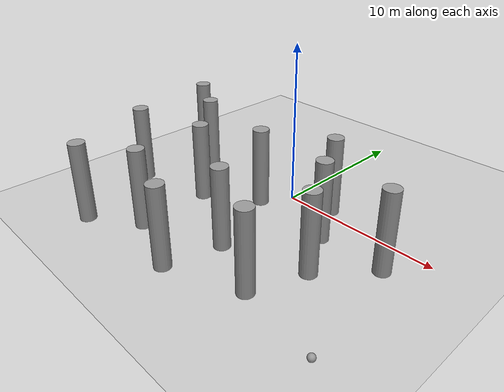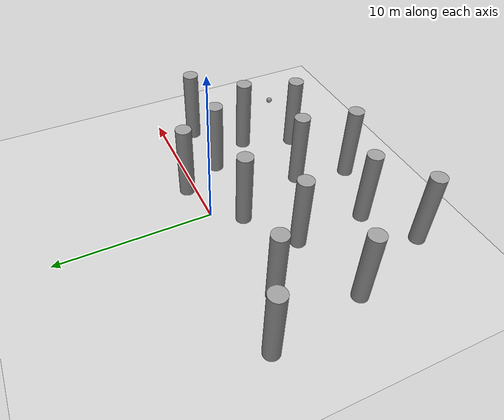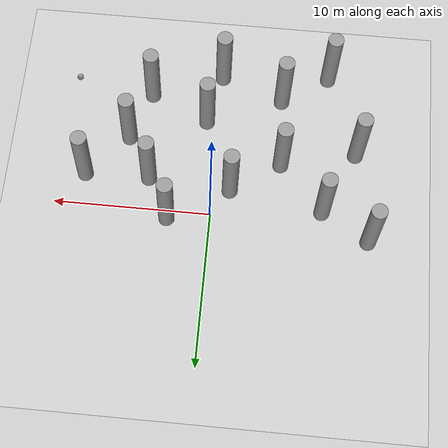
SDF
<sdf version="1.6">
 <world name="default">
  <model name="ground_plane">
   <static>1</static>
   <link name="link">
    <collision name="collision">
     <geometry><plane><normal>0 0 1</normal><size>100 100</size></plane></geometry>
    </collision>
    <visual name="visual">
     <cast_shadows>0</cast_shadows>
     <geometry><plane><normal>0 0 1</normal><size>100 100</size></plane></geometry>
     <material>
      <script><uri>file://media/materials/scripts/gazebo.material</uri><name>Gazebo/Gray</name></script>
     </material>
    </visual>
   </link>
  </model>
  <model name="unit_sphere">
   <link name="link">
    <inertial>
     <mass>1</mass>
     <inertia><ixx>0.1</ixx><ixy>0</ixy><ixz>0</ixz><iyy>0.1</iyy><iyz>0</iyz><izz>0.1</izz></inertia>
    </inertial>
    <gravity>0</gravity>
    <visual name="visual">
     <geometry><sphere><radius>0.203941</radius></sphere></geometry>
     <material>
      <script><name>Gazebo/Grey</name><uri>file://media/materials/scripts/gazebo.material</uri></script>
      <shader type="pixel"><normal_map>__default__</normal_map></shader>
     </material>
    </visual>
    <collision name="collision">
     <geometry><sphere><radius>0.203941</radius></sphere></geometry>
     <surface>
      <friction>
       <ode><mu>1</mu><mu2>1</mu2><fdir1>0 0 0</fdir1><slip1>0</slip1><slip2>0</slip2></ode>
       <torsional>
        <coefficient>1</coefficient>
        <patch_radius>0</patch_radius>
        <surface_radius>0</surface_radius>
        <use_patch_radius>1</use_patch_radius>
        <ode><slip>0</slip></ode>
       </torsional>
      </friction>
      <bounce><restitution_coefficient>0</restitution_coefficient><threshold>1e+06</threshold></bounce>
      <contact>
       <collide_without_contact>0</collide_without_contact>
       <collide_without_contact_bitmask>1</collide_without_contact_bitmask>
       <collide_bitmask>1</collide_bitmask>
       <ode>
        <soft_cfm>0</soft_cfm>
        <soft_erp>0.2</soft_erp>
        <kp>1e+13</kp>
        <kd>1</kd>
        <max_vel>0.01</max_vel>
        <min_depth>0</min_depth>
       </ode>
       <bullet>
        <split_impulse>1</split_impulse>
        <split_impulse_penetration_threshold>-0.01</split_impulse_penetration_threshold>
        <soft_cfm>0</soft_cfm>
        <soft_erp>0.2</soft_erp>
        <kp>1e+13</kp>
        <kd>1</kd>
       </bullet>
      </contact>
     </surface>
    </collision>
   </link>
   <static>0</static>
   <pose>9.54607 -9.14462 0.203941 0 -0 0</pose>
  </model>
  <model name="unit_cylinder_clone_clone">
   <link name="link">
    <inertial>
     <mass>1000</mass>
     <inertia><ixx>2145.83</ixx><ixy>0</ixy><ixz>0</ixz><iyy>2145.83</iyy><iyz>0</iyz><izz>125</izz></inertia>
    </inertial>
    <visual name="visual">
     <geometry><cylinder><radius>0.5</radius><length>5</length></cylinder></geometry>
     <material>
      <script><name>Gazebo/Grey</name><uri>file://media/materials/scripts/gazebo.material</uri></script>
      <shader type="pixel"><normal_map>__default__</normal_map></shader>
      <ambient>0.3 0.3 0.3 1</ambient>
      <diffuse>0.7 0.7 0.7 1</diffuse>
      <specular>0.01 0.01 0.01 1</specular>
      <emissive>0 0 0 1</emissive>
     </material>
    </visual>
    <collision name="collision">
     <geometry><cylinder><radius>0.5</radius><length>5</length></cylinder></geometry>
     <surface>
      <friction>
       <ode><mu>1</mu><mu2>1</mu2><fdir1>0 0 0</fdir1><slip1>0</slip1><slip2>0</slip2></ode>
       <torsional>
        <coefficient>1</coefficient>
        <patch_radius>0</patch_radius>
        <surface_radius>0</surface_radius>
        <use_patch_radius>1</use_patch_radius>
        <ode><slip>0</slip></ode>
       </torsional>
      </friction>
      <bounce><restitution_coefficient>0</restitution_coefficient><threshold>1e+06</threshold></bounce>
      <contact>
       <collide_without_contact>0</collide_without_contact>
       <collide_without_contact_bitmask>1</collide_without_contact_bitmask>
       <collide_bitmask>1</collide_bitmask>
       <ode>
        <soft_cfm>0</soft_cfm>
        <soft_erp>0.2</soft_erp>
        <kp>1e+13</kp>
        <kd>1</kd>
        <max_vel>0.01</max_vel>
        <min_depth>0</min_depth>
       </ode>
       <bullet>
        <split_impulse>1</split_impulse>
        <split_impulse_penetration_threshold>-0.01</split_impulse_penetration_threshold>
        <soft_cfm>0</soft_cfm>
        <soft_erp>0.2</soft_erp>
        <kp>1e+13</kp>
        <kd>1</kd>
       </bullet>
      </contact>
     </surface>
    </collision>
   </link>
   <static>0</static>
   <pose>2.71757 0.52613 2.49988 5e-06 -0 -0.008441</pose>
  </model>
  <model name="unit_cylinder_clone_clone_3">
   <link name="link">
    <inertial>
     <mass>1000</mass>
     <inertia><ixx>2145.83</ixx><ixy>0</ixy><ixz>0</ixz><iyy>2145.83</iyy><iyz>0</iyz><izz>125</izz></inertia>
    </inertial>
    <visual name="visual">
     <geometry><cylinder><radius>0.5</radius><length>5</length></cylinder></geometry>
     <material>
      <script><name>Gazebo/Grey</name><uri>file://media/materials/scripts/gazebo.material</uri></script>
      <shader type="pixel"><normal_map>__default__</normal_map></shader>
      <ambient>0.3 0.3 0.3 1</ambient>
      <diffuse>0.7 0.7 0.7 1</diffuse>
      <specular>0.01 0.01 0.01 1</specular>
      <emissive>0 0 0 1</emissive>
     </material>
    </visual>
    <collision name="collision">
     <geometry><cylinder><radius>0.5</radius><length>5</length></cylinder></geometry>
     <surface>
      <friction>
       <ode><mu>1</mu><mu2>1</mu2><fdir1>0 0 0</fdir1><slip1>0</slip1><slip2>0</slip2></ode>
       <torsional>
        <coefficient>1</coefficient>
        <patch_radius>0</patch_radius>
        <surface_radius>0</surface_radius>
        <use_patch_radius>1</use_patch_radius>
        <ode><slip>0</slip></ode>
       </torsional>
      </friction>
      <bounce><restitution_coefficient>0</restitution_coefficient><threshold>1e+06</threshold></bounce>
      <contact>
       <collide_without_contact>0</collide_without_contact>
       <collide_without_contact_bitmask>1</collide_without_contact_bitmask>
       <collide_bitmask>1</collide_bitmask>
       <ode>
        <soft_cfm>0</soft_cfm>
        <soft_erp>0.2</soft_erp>
        <kp>1e+13</kp>
        <kd>1</kd>
        <max_vel>0.01</max_vel>
        <min_depth>0</min_depth>
       </ode>
       <bullet>
        <split_impulse>1</split_impulse>
        <split_impulse_penetration_threshold>-0.01</split_impulse_penetration_threshold>
        <soft_cfm>0</soft_cfm>
        <soft_erp>0.2</soft_erp>
        <kp>1e+13</kp>
        <kd>1</kd>
       </bullet>
      </contact>
     </surface>
    </collision>
   </link>
   <static>0</static>
   <pose>-7.02633 -0.755505 2.49988 5e-06 -0 -0.008441</pose>
  </model>
  <model name="unit_cylinder_clone_clone_14">
   <link name="link">
    <inertial>
     <mass>1000</mass>
     <inertia><ixx>2145.83</ixx><ixy>0</ixy><ixz>0</ixz><iyy>2145.83</iyy><iyz>0</iyz><izz>125</izz></inertia>
    </inertial>
    <visual name="visual">
     <geometry><cylinder><radius>0.5</radius><length>5</length></cylinder></geometry>
     <material>
      <script><name>Gazebo/Grey</name><uri>file://media/materials/scripts/gazebo.material</uri></script>
      <shader type="pixel"><normal_map>__default__</normal_map></shader>
      <ambient>0.3 0.3 0.3 1</ambient>
      <diffuse>0.7 0.7 0.7 1</diffuse>
      <specular>0.01 0.01 0.01 1</specular>
      <emissive>0 0 0 1</emissive>
     </material>
    </visual>
    <collision name="collision">
     <geometry><cylinder><radius>0.5</radius><length>5</length></cylinder></geometry>
     <surface>
      <friction>
       <ode><mu>1</mu><mu2>1</mu2><fdir1>0 0 0</fdir1><slip1>0</slip1><slip2>0</slip2></ode>
       <torsional>
        <coefficient>1</coefficient>
        <patch_radius>0</patch_radius>
        <surface_radius>0</surface_radius>
        <use_patch_radius>1</use_patch_radius>
        <ode><slip>0</slip></ode>
       </torsional>
      </friction>
      <bounce><restitution_coefficient>0</restitution_coefficient><threshold>1e+06</threshold></bounce>
      <contact>
       <collide_without_contact>0</collide_without_contact>
       <collide_without_contact_bitmask>1</collide_without_contact_bitmask>
       <collide_bitmask>1</collide_bitmask>
       <ode>
        <soft_cfm>0</soft_cfm>
        <soft_erp>0.2</soft_erp>
        <kp>1e+13</kp>
        <kd>1</kd>
        <max_vel>0.01</max_vel>
        <min_depth>0</min_depth>
       </ode>
       <bullet>
        <split_impulse>1</split_impulse>
        <split_impulse_penetration_threshold>-0.01</split_impulse_penetration_threshold>
        <soft_cfm>0</soft_cfm>
        <soft_erp>0.2</soft_erp>
        <kp>1e+13</kp>
        <kd>1</kd>
       </bullet>
      </contact>
     </surface>
    </collision>
   </link>
   <static>0</static>
   <pose>8.23214 -2.10692 2.49988 5e-06 -0 -0.008441</pose>
  </model>
  <model name="unit_cylinder_clone_clone_15">
   <link name="link">
    <inertial>
     <mass>1000</mass>
     <inertia><ixx>2145.83</ixx><ixy>0</ixy><ixz>0</ixz><iyy>2145.83</iyy><iyz>0</iyz><izz>125</izz></inertia>
    </inertial>
    <visual name="visual">
     <geometry><cylinder><radius>0.5</radius><length>5</length></cylinder></geometry>
     <material>
      <script><name>Gazebo/Grey</name><uri>file://media/materials/scripts/gazebo.material</uri></script>
      <shader type="pixel"><normal_map>__default__</normal_map></shader>
      <ambient>0.3 0.3 0.3 1</ambient>
      <diffuse>0.7 0.7 0.7 1</diffuse>
      <specular>0.01 0.01 0.01 1</specular>
      <emissive>0 0 0 1</emissive>
     </material>
    </visual>
    <collision name="collision">
     <geometry><cylinder><radius>0.5</radius><length>5</length></cylinder></geometry>
     <surface>
      <friction>
       <ode><mu>1</mu><mu2>1</mu2><fdir1>0 0 0</fdir1><slip1>0</slip1><slip2>0</slip2></ode>
       <torsional>
        <coefficient>1</coefficient>
        <patch_radius>0</patch_radius>
        <surface_radius>0</surface_radius>
        <use_patch_radius>1</use_patch_radius>
        <ode><slip>0</slip></ode>
       </torsional>
      </friction>
      <bounce><restitution_coefficient>0</restitution_coefficient><threshold>1e+06</threshold></bounce>
      <contact>
       <collide_without_contact>0</collide_without_contact>
       <collide_without_contact_bitmask>1</collide_without_contact_bitmask>
       <collide_bitmask>1</collide_bitmask>
       <ode>
        <soft_cfm>0</soft_cfm>
        <soft_erp>0.2</soft_erp>
        <kp>1e+13</kp>
        <kd>1</kd>
        <max_vel>0.01</max_vel>
        <min_depth>0</min_depth>
       </ode>
       <bullet>
        <split_impulse>1</split_impulse>
        <split_impulse_penetration_threshold>-0.01</split_impulse_penetration_threshold>
        <soft_cfm>0</soft_cfm>
        <soft_erp>0.2</soft_erp>
        <kp>1e+13</kp>
        <kd>1</kd>
       </bullet>
      </contact>
     </surface>
    </collision>
   </link>
   <static>0</static>
   <pose>5.6976 -4.95788 2.49988 5e-06 -0 -0.008441</pose>
  </model>
  <model name="unit_cylinder_clone_clone_16">
   <link name="link">
    <inertial>
     <mass>1000</mass>
     <inertia><ixx>2145.83</ixx><ixy>0</ixy><ixz>0</ixz><iyy>2145.83</iyy><iyz>0</iyz><izz>125</izz></inertia>
    </inertial>
    <visual name="visual">
     <geometry><cylinder><radius>0.5</radius><length>5</length></cylinder></geometry>
     <material>
      <script><name>Gazebo/Grey</name><uri>file://media/materials/scripts/gazebo.material</uri></script>
      <shader type="pixel"><normal_map>__default__</normal_map></shader>
      <ambient>0.3 0.3 0.3 1</ambient>
      <diffuse>0.7 0.7 0.7 1</diffuse>
      <specular>0.01 0.01 0.01 1</specular>
      <emissive>0 0 0 1</emissive>
     </material>
    </visual>
    <collision name="collision">
     <geometry><cylinder><radius>0.5</radius><length>5</length></cylinder></geometry>
     <surface>
      <friction>
       <ode><mu>1</mu><mu2>1</mu2><fdir1>0 0 0</fdir1><slip1>0</slip1><slip2>0</slip2></ode>
       <torsional>
        <coefficient>1</coefficient>
        <patch_radius>0</patch_radius>
        <surface_radius>0</surface_radius>
        <use_patch_radius>1</use_patch_radius>
        <ode><slip>0</slip></ode>
       </torsional>
      </friction>
      <bounce><restitution_coefficient>0</restitution_coefficient><threshold>1e+06</threshold></bounce>
      <contact>
       <collide_without_contact>0</collide_without_contact>
       <collide_without_contact_bitmask>1</collide_without_contact_bitmask>
       <collide_bitmask>1</collide_bitmask>
       <ode>
        <soft_cfm>0</soft_cfm>
        <soft_erp>0.2</soft_erp>
        <kp>1e+13</kp>
        <kd>1</kd>
        <max_vel>0.01</max_vel>
        <min_depth>0</min_depth>
       </ode>
       <bullet>
        <split_impulse>1</split_impulse>
        <split_impulse_penetration_threshold>-0.01</split_impulse_penetration_threshold>
        <soft_cfm>0</soft_cfm>
        <soft_erp>0.2</soft_erp>
        <kp>1e+13</kp>
        <kd>1</kd>
       </bullet>
      </contact>
     </surface>
    </collision>
   </link>
   <static>0</static>
   <pose>4.52784 -8.26786 2.49988 5e-06 -0 -0.008441</pose>
  </model>
  <model name="unit_cylinder_clone_clone_17">
   <link name="link">
    <inertial>
     <mass>1000</mass>
     <inertia><ixx>2145.83</ixx><ixy>0</ixy><ixz>0</ixz><iyy>2145.83</iyy><iyz>0</iyz><izz>125</izz></inertia>
    </inertial>
    <visual name="visual">
     <geometry><cylinder><radius>0.5</radius><length>5</length></cylinder></geometry>
     <material>
      <script><name>Gazebo/Grey</name><uri>file://media/materials/scripts/gazebo.material</uri></script>
      <shader type="pixel"><normal_map>__default__</normal_map></shader>
      <ambient>0.3 0.3 0.3 1</ambient>
      <diffuse>0.7 0.7 0.7 1</diffuse>
      <specular>0.01 0.01 0.01 1</specular>
      <emissive>0 0 0 1</emissive>
     </material>
    </visual>
    <collision name="collision">
     <geometry><cylinder><radius>0.5</radius><length>5</length></cylinder></geometry>
     <surface>
      <friction>
       <ode><mu>1</mu><mu2>1</mu2><fdir1>0 0 0</fdir1><slip1>0</slip1><slip2>0</slip2></ode>
       <torsional>
        <coefficient>1</coefficient>
        <patch_radius>0</patch_radius>
        <surface_radius>0</surface_radius>
        <use_patch_radius>1</use_patch_radius>
        <ode><slip>0</slip></ode>
       </torsional>
      </friction>
      <bounce><restitution_coefficient>0</restitution_coefficient><threshold>1e+06</threshold></bounce>
      <contact>
       <collide_without_contact>0</collide_without_contact>
       <collide_without_contact_bitmask>1</collide_without_contact_bitmask>
       <collide_bitmask>1</collide_bitmask>
       <ode>
        <soft_cfm>0</soft_cfm>
        <soft_erp>0.2</soft_erp>
        <kp>1e+13</kp>
        <kd>1</kd>
        <max_vel>0.01</max_vel>
        <min_depth>0</min_depth>
       </ode>
       <bullet>
        <split_impulse>1</split_impulse>
        <split_impulse_penetration_threshold>-0.01</split_impulse_penetration_threshold>
        <soft_cfm>0</soft_cfm>
        <soft_erp>0.2</soft_erp>
        <kp>1e+13</kp>
        <kd>1</kd>
       </bullet>
      </contact>
     </surface>
    </collision>
   </link>
   <static>0</static>
   <pose>4.12657 -2.14858 2.49988 5e-06 -0 -0.008441</pose>
  </model>
  <model name="unit_cylinder_clone_clone_18">
   <link name="link">
    <inertial>
     <mass>1000</mass>
     <inertia><ixx>2145.83</ixx><ixy>0</ixy><ixz>0</ixz><iyy>2145.83</iyy><iyz>0</iyz><izz>125</izz></inertia>
    </inertial>
    <visual name="visual">
     <geometry><cylinder><radius>0.5</radius><length>5</length></cylinder></geometry>
     <material>
      <script><name>Gazebo/Grey</name><uri>file://media/materials/scripts/gazebo.material</uri></script>
      <shader type="pixel"><normal_map>__default__</normal_map></shader>
      <ambient>0.3 0.3 0.3 1</ambient>
      <diffuse>0.7 0.7 0.7 1</diffuse>
      <specular>0.01 0.01 0.01 1</specular>
      <emissive>0 0 0 1</emissive>
     </material>
    </visual>
    <collision name="collision">
     <geometry><cylinder><radius>0.5</radius><length>5</length></cylinder></geometry>
     <surface>
      <friction>
       <ode><mu>1</mu><mu2>1</mu2><fdir1>0 0 0</fdir1><slip1>0</slip1><slip2>0</slip2></ode>
       <torsional>
        <coefficient>1</coefficient>
        <patch_radius>0</patch_radius>
        <surface_radius>0</surface_radius>
        <use_patch_radius>1</use_patch_radius>
        <ode><slip>0</slip></ode>
       </torsional>
      </friction>
      <bounce><restitution_coefficient>0</restitution_coefficient><threshold>1e+06</threshold></bounce>
      <contact>
       <collide_without_contact>0</collide_without_contact>
       <collide_without_contact_bitmask>1</collide_without_contact_bitmask>
       <collide_bitmask>1</collide_bitmask>
       <ode>
        <soft_cfm>0</soft_cfm>
        <soft_erp>0.2</soft_erp>
        <kp>1e+13</kp>
        <kd>1</kd>
        <max_vel>0.01</max_vel>
        <min_depth>0</min_depth>
       </ode>
       <bullet>
        <split_impulse>1</split_impulse>
        <split_impulse_penetration_threshold>-0.01</split_impulse_penetration_threshold>
        <soft_cfm>0</soft_cfm>
        <soft_erp>0.2</soft_erp>
        <kp>1e+13</kp>
        <kd>1</kd>
       </bullet>
      </contact>
     </surface>
    </collision>
   </link>
   <static>0</static>
   <pose>0.787075 -6.57936 2.49988 5e-06 -0 -0.008441</pose>
  </model>
  <model name="unit_cylinder_clone_clone_19">
   <link name="link">
    <inertial>
     <mass>1000</mass>
     <inertia><ixx>2145.83</ixx><ixy>0</ixy><ixz>0</ixz><iyy>2145.83</iyy><iyz>0</iyz><izz>125</izz></inertia>
    </inertial>
    <visual name="visual">
     <geometry><cylinder><radius>0.5</radius><length>5</length></cylinder></geometry>
     <material>
      <script><name>Gazebo/Grey</name><uri>file://media/materials/scripts/gazebo.material</uri></script>
      <shader type="pixel"><normal_map>__default__</normal_map></shader>
      <ambient>0.3 0.3 0.3 1</ambient>
      <diffuse>0.7 0.7 0.7 1</diffuse>
      <specular>0.01 0.01 0.01 1</specular>
      <emissive>0 0 0 1</emissive>
     </material>
    </visual>
    <collision name="collision">
     <geometry><cylinder><radius>0.5</radius><length>5</length></cylinder></geometry>
     <surface>
      <friction>
       <ode><mu>1</mu><mu2>1</mu2><fdir1>0 0 0</fdir1><slip1>0</slip1><slip2>0</slip2></ode>
       <torsional>
        <coefficient>1</coefficient>
        <patch_radius>0</patch_radius>
        <surface_radius>0</surface_radius>
        <use_patch_radius>1</use_patch_radius>
        <ode><slip>0</slip></ode>
       </torsional>
      </friction>
      <bounce><restitution_coefficient>0</restitution_coefficient><threshold>1e+06</threshold></bounce>
      <contact>
       <collide_without_contact>0</collide_without_contact>
       <collide_without_contact_bitmask>1</collide_without_contact_bitmask>
       <collide_bitmask>1</collide_bitmask>
       <ode>
        <soft_cfm>0</soft_cfm>
        <soft_erp>0.2</soft_erp>
        <kp>1e+13</kp>
        <kd>1</kd>
        <max_vel>0.01</max_vel>
        <min_depth>0</min_depth>
       </ode>
       <bullet>
        <split_impulse>1</split_impulse>
        <split_impulse_penetration_threshold>-0.01</split_impulse_penetration_threshold>
        <soft_cfm>0</soft_cfm>
        <soft_erp>0.2</soft_erp>
        <kp>1e+13</kp>
        <kd>1</kd>
       </bullet>
      </contact>
     </surface>
    </collision>
   </link>
   <static>0</static>
   <pose>-1.10448 -1.74257 2.49988 5e-06 -0 -0.008441</pose>
  </model>
  <model name="unit_cylinder_clone_clone_20">
   <link name="link">
    <inertial>
     <mass>1000</mass>
     <inertia><ixx>2145.83</ixx><ixy>0</ixy><ixz>0</ixz><iyy>2145.83</iyy><iyz>0</iyz><izz>125</izz></inertia>
    </inertial>
    <visual name="visual">
     <geometry><cylinder><radius>0.5</radius><length>5</length></cylinder></geometry>
     <material>
      <script><name>Gazebo/Grey</name><uri>file://media/materials/scripts/gazebo.material</uri></script>
      <shader type="pixel"><normal_map>__default__</normal_map></shader>
      <ambient>0.3 0.3 0.3 1</ambient>
      <diffuse>0.7 0.7 0.7 1</diffuse>
      <specular>0.01 0.01 0.01 1</specular>
      <emissive>0 0 0 1</emissive>
     </material>
    </visual>
    <collision name="collision">
     <geometry><cylinder><radius>0.5</radius><length>5</length></cylinder></geometry>
     <surface>
      <friction>
       <ode><mu>1</mu><mu2>1</mu2><fdir1>0 0 0</fdir1><slip1>0</slip1><slip2>0</slip2></ode>
       <torsional>
        <coefficient>1</coefficient>
        <patch_radius>0</patch_radius>
        <surface_radius>0</surface_radius>
        <use_patch_radius>1</use_patch_radius>
        <ode><slip>0</slip></ode>
       </torsional>
      </friction>
      <bounce><restitution_coefficient>0</restitution_coefficient><threshold>1e+06</threshold></bounce>
      <contact>
       <collide_without_contact>0</collide_without_contact>
       <collide_without_contact_bitmask>1</collide_without_contact_bitmask>
       <collide_bitmask>1</collide_bitmask>
       <ode>
        <soft_cfm>0</soft_cfm>
        <soft_erp>0.2</soft_erp>
        <kp>1e+13</kp>
        <kd>1</kd>
        <max_vel>0.01</max_vel>
        <min_depth>0</min_depth>
       </ode>
       <bullet>
        <split_impulse>1</split_impulse>
        <split_impulse_penetration_threshold>-0.01</split_impulse_penetration_threshold>
        <soft_cfm>0</soft_cfm>
        <soft_erp>0.2</soft_erp>
        <kp>1e+13</kp>
        <kd>1</kd>
       </bullet>
      </contact>
     </surface>
    </collision>
   </link>
   <static>0</static>
   <pose>-4.2174 -3.85556 2.49988 5e-06 -0 -0.008441</pose>
  </model>
  <model name="unit_cylinder_clone_clone_21">
   <link name="link">
    <inertial>
     <mass>1000</mass>
     <inertia><ixx>2145.83</ixx><ixy>0</ixy><ixz>0</ixz><iyy>2145.83</iyy><iyz>0</iyz><izz>125</izz></inertia>
    </inertial>
    <visual name="visual">
     <geometry><cylinder><radius>0.5</radius><length>5</length></cylinder></geometry>
     <material>
      <script><name>Gazebo/Grey</name><uri>file://media/materials/scripts/gazebo.material</uri></script>
      <shader type="pixel"><normal_map>__default__</normal_map></shader>
      <ambient>0.3 0.3 0.3 1</ambient>
      <diffuse>0.7 0.7 0.7 1</diffuse>
      <specular>0.01 0.01 0.01 1</specular>
      <emissive>0 0 0 1</emissive>
     </material>
    </visual>
    <collision name="collision">
     <geometry><cylinder><radius>0.5</radius><length>5</length></cylinder></geometry>
     <surface>
      <friction>
       <ode><mu>1</mu><mu2>1</mu2><fdir1>0 0 0</fdir1><slip1>0</slip1><slip2>0</slip2></ode>
       <torsional>
        <coefficient>1</coefficient>
        <patch_radius>0</patch_radius>
        <surface_radius>0</surface_radius>
        <use_patch_radius>1</use_patch_radius>
        <ode><slip>0</slip></ode>
       </torsional>
      </friction>
      <bounce><restitution_coefficient>0</restitution_coefficient><threshold>1e+06</threshold></bounce>
      <contact>
       <collide_without_contact>0</collide_without_contact>
       <collide_without_contact_bitmask>1</collide_without_contact_bitmask>
       <collide_bitmask>1</collide_bitmask>
       <ode>
        <soft_cfm>0</soft_cfm>
        <soft_erp>0.2</soft_erp>
        <kp>1e+13</kp>
        <kd>1</kd>
        <max_vel>0.01</max_vel>
        <min_depth>0</min_depth>
       </ode>
       <bullet>
        <split_impulse>1</split_impulse>
        <split_impulse_penetration_threshold>-0.01</split_impulse_penetration_threshold>
        <soft_cfm>0</soft_cfm>
        <soft_erp>0.2</soft_erp>
        <kp>1e+13</kp>
        <kd>1</kd>
       </bullet>
      </contact>
     </surface>
    </collision>
   </link>
   <static>0</static>
   <pose>0 -10 2.49988 5e-06 -0 -0.008441</pose>
  </model>
  <model name="unit_cylinder_clone_clone_22">
   <link name="link">
    <inertial>
     <mass>1000</mass>
     <inertia><ixx>2145.83</ixx><ixy>0</ixy><ixz>0</ixz><iyy>2145.83</iyy><iyz>0</iyz><izz>125</izz></inertia>
    </inertial>
    <visual name="visual">
     <geometry><cylinder><radius>0.5</radius><length>5</length></cylinder></geometry>
     <material>
      <script><name>Gazebo/Grey</name><uri>file://media/materials/scripts/gazebo.material</uri></script>
      <shader type="pixel"><normal_map>__default__</normal_map></shader>
      <ambient>0.3 0.3 0.3 1</ambient>
      <diffuse>0.7 0.7 0.7 1</diffuse>
      <specular>0.01 0.01 0.01 1</specular>
      <emissive>0 0 0 1</emissive>
     </material>
    </visual>
    <collision name="collision">
     <geometry><cylinder><radius>0.5</radius><length>5</length></cylinder></geometry>
     <surface>
      <friction>
       <ode><mu>1</mu><mu2>1</mu2><fdir1>0 0 0</fdir1><slip1>0</slip1><slip2>0</slip2></ode>
       <torsional>
        <coefficient>1</coefficient>
        <patch_radius>0</patch_radius>
        <surface_radius>0</surface_radius>
        <use_patch_radius>1</use_patch_radius>
        <ode><slip>0</slip></ode>
       </torsional>
      </friction>
      <bounce><restitution_coefficient>0</restitution_coefficient><threshold>1e+06</threshold></bounce>
      <contact>
       <collide_without_contact>0</collide_without_contact>
       <collide_without_contact_bitmask>1</collide_without_contact_bitmask>
       <collide_bitmask>1</collide_bitmask>
       <ode>
        <soft_cfm>0</soft_cfm>
        <soft_erp>0.2</soft_erp>
        <kp>1e+13</kp>
        <kd>1</kd>
        <max_vel>0.01</max_vel>
        <min_depth>0</min_depth>
       </ode>
       <bullet>
        <split_impulse>1</split_impulse>
        <split_impulse_penetration_threshold>-0.01</split_impulse_penetration_threshold>
        <soft_cfm>0</soft_cfm>
        <soft_erp>0.2</soft_erp>
        <kp>1e+13</kp>
        <kd>1</kd>
       </bullet>
      </contact>
     </surface>
    </collision>
   </link>
   <static>0</static>
   <pose>-4 -8.53937 2.49988 5e-06 -0 -0.008441</pose>
  </model>
  <model name="unit_cylinder_clone_clone_23">
   <link name="link">
    <inertial>
     <mass>1000</mass>
     <inertia><ixx>2145.83</ixx><ixy>0</ixy><ixz>0</ixz><iyy>2145.83</iyy><iyz>0</iyz><izz>125</izz></inertia>
    </inertial>
    <visual name="visual">
     <geometry><cylinder><radius>0.5</radius><length>5</length></cylinder></geometry>
     <material>
      <script><name>Gazebo/Grey</name><uri>file://media/materials/scripts/gazebo.material</uri></script>
      <shader type="pixel"><normal_map>__default__</normal_map></shader>
      <ambient>0.3 0.3 0.3 1</ambient>
      <diffuse>0.7 0.7 0.7 1</diffuse>
      <specular>0.01 0.01 0.01 1</specular>
      <emissive>0 0 0 1</emissive>
     </material>
    </visual>
    <collision name="collision">
     <geometry><cylinder><radius>0.5</radius><length>5</length></cylinder></geometry>
     <surface>
      <friction>
       <ode><mu>1</mu><mu2>1</mu2><fdir1>0 0 0</fdir1><slip1>0</slip1><slip2>0</slip2></ode>
       <torsional>
        <coefficient>1</coefficient>
        <patch_radius>0</patch_radius>
        <surface_radius>0</surface_radius>
        <use_patch_radius>1</use_patch_radius>
        <ode><slip>0</slip></ode>
       </torsional>
      </friction>
      <bounce><restitution_coefficient>0</restitution_coefficient><threshold>1e+06</threshold></bounce>
      <contact>
       <collide_without_contact>0</collide_without_contact>
       <collide_without_contact_bitmask>1</collide_without_contact_bitmask>
       <collide_bitmask>1</collide_bitmask>
       <ode>
        <soft_cfm>0</soft_cfm>
        <soft_erp>0.2</soft_erp>
        <kp>1e+13</kp>
        <kd>1</kd>
        <max_vel>0.01</max_vel>
        <min_depth>0</min_depth>
       </ode>
       <bullet>
        <split_impulse>1</split_impulse>
        <split_impulse_penetration_threshold>-0.01</split_impulse_penetration_threshold>
        <soft_cfm>0</soft_cfm>
        <soft_erp>0.2</soft_erp>
        <kp>1e+13</kp>
        <kd>1</kd>
       </bullet>
      </contact>
     </surface>
    </collision>
   </link>
   <static>0</static>
   <pose>-6.97527 -10.5264 2.49988 5e-06 -0 -0.008441</pose>
  </model>
  <model name="unit_cylinder_clone_clone_24">
   <link name="link">
    <inertial>
     <mass>1000</mass>
     <inertia><ixx>2145.83</ixx><ixy>0</ixy><ixz>0</ixz><iyy>2145.83</iyy><iyz>0</iyz><izz>125</izz></inertia>
    </inertial>
    <visual name="visual">
     <geometry><cylinder><radius>0.5</radius><length>5</length></cylinder></geometry>
     <material>
      <script><name>Gazebo/Grey</name><uri>file://media/materials/scripts/gazebo.material</uri></script>
      <shader type="pixel"><normal_map>__default__</normal_map></shader>
      <ambient>0.3 0.3 0.3 1</ambient>
      <diffuse>0.7 0.7 0.7 1</diffuse>
      <specular>0.01 0.01 0.01 1</specular>
      <emissive>0 0 0 1</emissive>
     </material>
    </visual>
    <collision name="collision">
     <geometry><cylinder><radius>0.5</radius><length>5</length></cylinder></geometry>
     <surface>
      <friction>
       <ode><mu>1</mu><mu2>1</mu2><fdir1>0 0 0</fdir1><slip1>0</slip1><slip2>0</slip2></ode>
       <torsional>
        <coefficient>1</coefficient>
        <patch_radius>0</patch_radius>
        <surface_radius>0</surface_radius>
        <use_patch_radius>1</use_patch_radius>
        <ode><slip>0</slip></ode>
       </torsional>
      </friction>
      <bounce><restitution_coefficient>0</restitution_coefficient><threshold>1e+06</threshold></bounce>
      <contact>
       <collide_without_contact>0</collide_without_contact>
       <collide_without_contact_bitmask>1</collide_without_contact_bitmask>
       <collide_bitmask>1</collide_bitmask>
       <ode>
        <soft_cfm>0</soft_cfm>
        <soft_erp>0.2</soft_erp>
        <kp>1e+13</kp>
        <kd>1</kd>
        <max_vel>0.01</max_vel>
        <min_depth>0</min_depth>
       </ode>
       <bullet>
        <split_impulse>1</split_impulse>
        <split_impulse_penetration_threshold>-0.01</split_impulse_penetration_threshold>
        <soft_cfm>0</soft_cfm>
        <soft_erp>0.2</soft_erp>
        <kp>1e+13</kp>
        <kd>1</kd>
       </bullet>
      </contact>
     </surface>
    </collision>
   </link>
   <static>0</static>
   <pose>-9 -5 2.49988 5e-06 -0 -0.008441</pose>
  </model>
  <model name="unit_cylinder_clone_clone_25">
   <link name="link">
    <inertial>
     <mass>1000</mass>
     <inertia><ixx>2145.83</ixx><ixy>0</ixy><ixz>0</ixz><iyy>2145.83</iyy><iyz>0</iyz><izz>125</izz></inertia>
    </inertial>
    <visual name="visual">
     <geometry><cylinder><radius>0.5</radius><length>5</length></cylinder></geometry>
     <material>
      <script><name>Gazebo/Grey</name><uri>file://media/materials/scripts/gazebo.material</uri></script>
      <shader type="pixel"><normal_map>__default__</normal_map></shader>
      <ambient>0.3 0.3 0.3 1</ambient>
      <diffuse>0.7 0.7 0.7 1</diffuse>
      <specular>0.01 0.01 0.01 1</specular>
      <emissive>0 0 0 1</emissive>
     </material>
    </visual>
    <collision name="collision">
     <geometry><cylinder><radius>0.5</radius><length>5</length></cylinder></geometry>
     <surface>
      <friction>
       <ode><mu>1</mu><mu2>1</mu2><fdir1>0 0 0</fdir1><slip1>0</slip1><slip2>0</slip2></ode>
       <torsional>
        <coefficient>1</coefficient>
        <patch_radius>0</patch_radius>
        <surface_radius>0</surface_radius>
        <use_patch_radius>1</use_patch_radius>
        <ode><slip>0</slip></ode>
       </torsional>
      </friction>
      <bounce><restitution_coefficient>0</restitution_coefficient><threshold>1e+06</threshold></bounce>
      <contact>
       <collide_without_contact>0</collide_without_contact>
       <collide_without_contact_bitmask>1</collide_without_contact_bitmask>
       <collide_bitmask>1</collide_bitmask>
       <ode>
        <soft_cfm>0</soft_cfm>
        <soft_erp>0.2</soft_erp>
        <kp>1e+13</kp>
        <kd>1</kd>
        <max_vel>0.01</max_vel>
        <min_depth>0</min_depth>
       </ode>
       <bullet>
        <split_impulse>1</split_impulse>
        <split_impulse_penetration_threshold>-0.01</split_impulse_penetration_threshold>
        <soft_cfm>0</soft_cfm>
        <soft_erp>0.2</soft_erp>
        <kp>1e+13</kp>
        <kd>1</kd>
       </bullet>
      </contact>
     </surface>
    </collision>
   </link>
   <static>0</static>
   <pose>-10 1 2.49988 5e-06 -0 -0.008441</pose>
  </model>
 </world>
</sdf>
